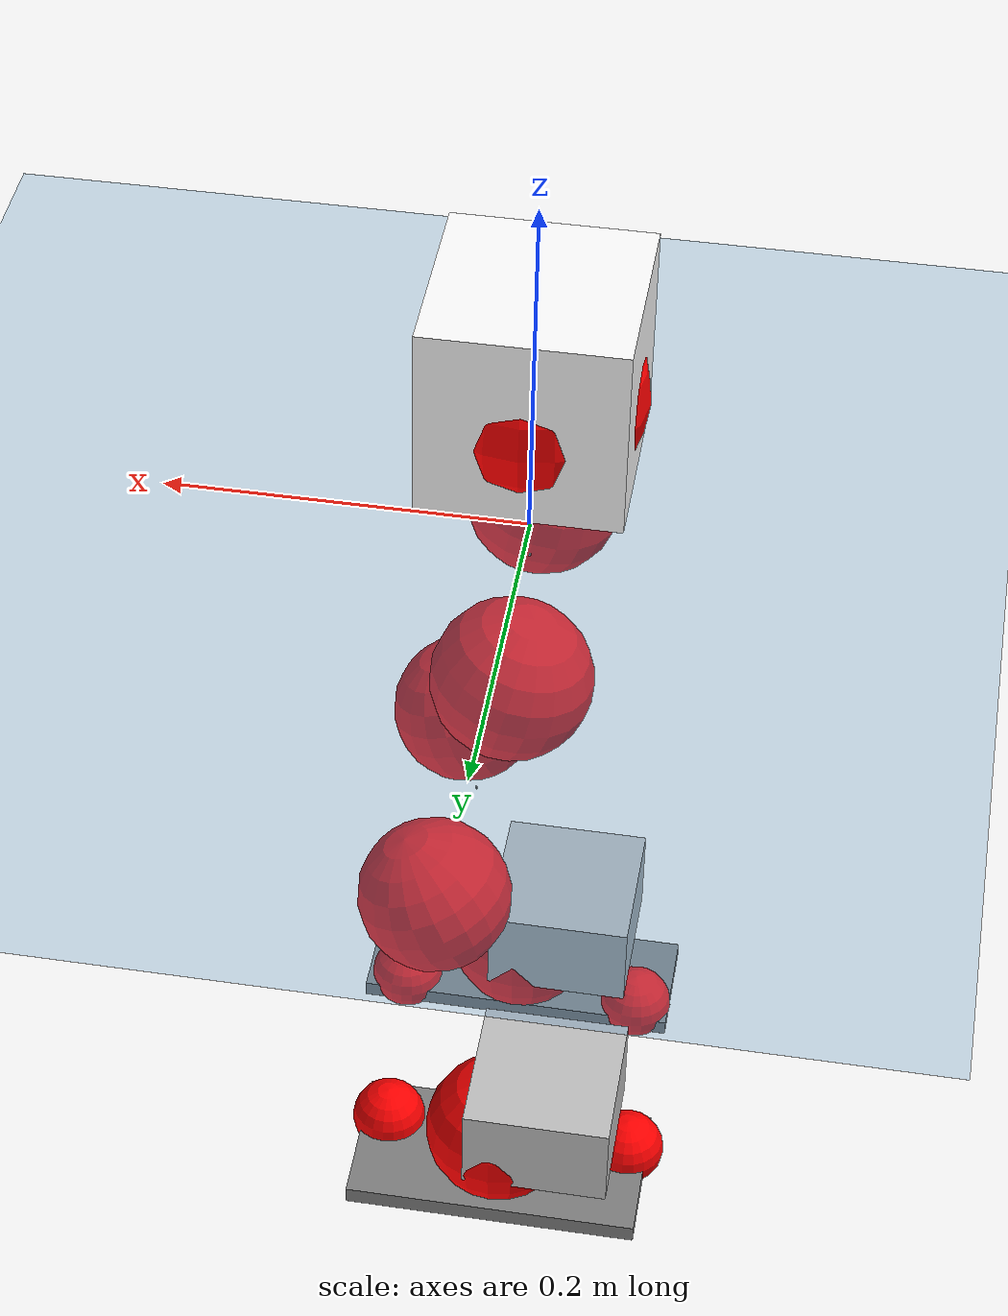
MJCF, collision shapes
<mujoco model="pi_12dof_release_v1">
  <compiler angle="radian" assetdir="assets" balanceinertia="true" inertiafromgeom="false"/>

  <option timestep="0.005" density="1.2" viscosity="2e-05"/>

  <size nkey="1"/>

  <visual>
    <quality shadowsize="8192"/>
    <map shadowclip="0.5"/>
  </visual>

  <default>
    <default class="/">
      <joint armature="0.01" damping="0.01" frictionloss="0.01"/>
      <geom contype="0" conaffinity="0" group="1" solref="-1000 -80"/>
      <site size="0.01 0.005 0.005" group="5"/>
      <general forcelimited="true" biastype="affine" gainprm="20" biasprm="0 -20 -0.5"/>
      <default class="foot">
        <geom size="0.0845 0.036 0.005" type="box" condim="6" group="4" priority="1" friction="0.9 0.2 0.2" solimp="0.015 1 0.005"/>
      </default>
      <default class="reward_collision_sphere">
        <geom group="5" rgba="1 0 0 1"/>
      </default>
    </default>
  </default>

  <asset>
    <texture type="skybox" colorspace="auto" name="//unnamed_texture_0" builtin="gradient" rgb1="0.95 0.95 0.95" rgb2="0.95 0.95 0.95" width="100" height="600"/>
    <texture type="2d" colorspace="auto" name="texplane" builtin="checker" rgb1="0.345 0.575 0.748" rgb2="0.345 0.575 0.748" markrgb="1 1 1" width="512" height="512"/>
    <material name="MatPlane" class="/" texture="texplane" texuniform="true" texrepeat="2 2" specular="0.9"/>
    <mesh name="baselink_1" class="/" file="baselink_1.STL"/>
    <mesh name="r_hip_pitch_link" class="/" file="r_hip_pitch_link.STL"/>
    <mesh name="r_hip_roll_link" class="/" file="r_hip_roll_link.STL"/>
    <mesh name="r_thigh_link" class="/" file="r_thigh_link.STL"/>
    <mesh name="r_calf_link" class="/" file="r_calf_link.STL"/>
    <mesh name="r_ankle_pitch_link" class="/" file="r_ankle_pitch_link.STL"/>
    <mesh name="r_ankle_roll_link" class="/" file="r_ankle_roll_link.STL"/>
    <mesh name="l_hip_pitch_link" class="/" file="l_hip_pitch_link.STL"/>
    <mesh name="l_hip_roll_link" class="/" file="l_hip_roll_link.STL"/>
    <mesh name="l_thigh_link" class="/" file="l_thigh_link.STL"/>
    <mesh name="l_calf_link" class="/" file="l_calf_link.STL"/>
    <mesh name="l_ankle_pitch_link" class="/" file="l_ankle_pitch_link.STL"/>
    <mesh name="l_ankle_roll_link" class="/" file="l_ankle_roll_link.STL"/>
  </asset>

  <worldbody>
    <geom name="floor" class="/" size="100 100 0.125" type="plane" group="0" material="MatPlane"/>
    <light name="toplight_shadow" class="/" pos="0 0 5" dir="0.0990148 0.0990148 -0.990148" type="directional" ambient="0.04 0.04 0.04" diffuse="0.55 0.55 0.55" specular="0.12 0.12 0.12"/>
    <light name="toplight_fill" class="/" pos="0 0 5" dir="0.0990148 0.0990148 -0.990148" type="directional" castshadow="false" ambient="0.04 0.04 0.04" diffuse="0.3 0.3 0.3" specular="0.08 0.08 0.08"/>
    <body name="trunk" pos="-0.000394373 -0.00270582 -0.00103915" quat="1 -1.92681e-05 -3.91358e-05 2.03156e-05">
      <inertial pos="0.00379764 -0.00272264 0.0502945" quat="0.696551 0.00959389 0.0125807 0.717333" mass="2.80398" diaginertia="0.0138232 0.00702852 0.0127116"/>
      <joint name="//unnamed_joint_0" type="free"/>
      <geom name="//unnamed_geom_1" class="/" type="mesh" density="0" rgba="1 1 1 1" mesh="baselink_1"/>
      <geom name="//unnamed_geom_2" class="/" size="0.054773 0.054773 0.054773" pos="0 0 0.10009" type="box" rgba="1 1 1 1"/>
      <geom name="//unnamed_geom_3" class="reward_collision_sphere" size="0.0602503" pos="0 0 0.0875788"/>
      <site name="imu" class="/" pos="0.0138144 0.0134611 -0.0135443" size="0.0109546"/>
      <camera name="track" class="/" pos="0 -1.91264 0" quat="0.707107 0.707107 0 0" mode="trackcom"/>
      <camera name="ego_camera" class="/" pos="0.0809198 0 0.225203" quat="-0.5 -0.5 0.5 0.5"/>
      <body name="r_hip_pitch_link" pos="0.00281841 -0.0211368 -0.0397094" quat="0.992241 -0.00103307 -0.124326 0.000642467">
        <inertial pos="0.00185915 -0.054078 0.00272205" quat="-0.0172102 0.704853 -0.0237475 0.708747" mass="0.470004" diaginertia="0.000158568 7.52904e-05 0.000253268"/>
        <joint name="r_hip_pitch_joint" class="/" pos="0 0 0" axis="0.00327634 -0.999993 -0.00182193" range="-1.74136 1.19585" armature="0.0109823" damping="0.0169627" frictionloss="0.010777"/>
        <geom name="//unnamed_geom_4" class="/" type="mesh" density="0" rgba="0.75294 0.75294 0.75294 1" mesh="r_hip_pitch_link"/>
        <geom name="//unnamed_geom_5" class="/" size="0.00054773 0.00054773 0.00054773" type="box" rgba="0.75294 0.75294 0.75294 1"/>
        <body name="r_hip_roll_link" pos="-0.000400175 -0.0531088 -0.00107001" quat="0.999999 0.000945805 4.21785e-05 -0.00107189">
          <inertial pos="0.00134323 0.00286367 -0.0765011" quat="0.706604 -0.0904901 -0.0816017 0.697039" mass="0.509874" diaginertia="0.000478203 0.000219742 0.000385745"/>
          <joint name="r_hip_roll_joint" class="/" pos="0 0 0" axis="-0.999899 0.00012136 -0.014185" range="-0.124604 0.547924" armature="0.00929707" damping="0.0217474" frictionloss="0.0114366"/>
          <geom name="//unnamed_geom_6" class="/" type="mesh" density="0" rgba="0.75294 0.75294 0.75294 1" mesh="r_hip_roll_link"/>
          <geom name="//unnamed_geom_7" class="/" size="0.00054773 0.00054773 0.00054773" type="box" rgba="0.75294 0.75294 0.75294 1"/>
          <geom name="//unnamed_geom_8" class="reward_collision_sphere" size="0.0438184"/>
          <body name="r_thigh_link" pos="-0.00161357 -0.00161831 -0.0877298" quat="0.999999 0.000172329 0.000872206 -0.00103812">
            <inertial pos="0.00322779 0.000872526 -0.060622" quat="0.737315 0.675547 -0.00162509 0.000681982" mass="0.150819" diaginertia="0.000177432 7.76995e-05 0.000175274"/>
            <joint name="r_thigh_joint" class="/" pos="0 0 0" axis="-0.0018041 -0.00132035 -0.999998" range="-0.358071 0.591256" armature="0.009821" damping="0.00170973" frictionloss="0.0112203"/>
            <geom name="//unnamed_geom_9" class="/" type="mesh" density="0" rgba="0.75294 0.75294 0.75294 1" mesh="r_thigh_link"/>
            <geom name="//unnamed_geom_10" class="/" size="0.00054773 0.00054773 0.00054773" type="box" rgba="0.75294 0.75294 0.75294 1"/>
            <body name="r_calf_link" pos="0.000450064 -0.00385681 -0.0894513" quat="0.947666 -0.000196266 0.319264 4.6024e-05">
              <inertial pos="-0.00235353 -0.000678368 -0.0871646" quat="0.999954 -0.00560948 0.00109791 0.00771668" mass="1.02612" diaginertia="0.00501925 0.0027379 0.000545652"/>
              <joint name="r_calf_joint" class="/" pos="0 0 0" axis="0.000940432 -0.999922 0.0124191" range="-1.63487 0.699131" armature="0.0107471" damping="0.00970374" frictionloss="0.0122944"/>
              <geom name="//unnamed_geom_11" class="/" type="mesh" density="0" rgba="0.75294 0.75294 0.75294 1" mesh="r_calf_link"/>
              <geom name="//unnamed_geom_12" class="/" size="0.00054773 0.00054773 0.00054773" type="box" rgba="0.75294 0.75294 0.75294 1"/>
              <geom name="//unnamed_geom_13" class="reward_collision_sphere" size="0.0438184"/>
              <body name="r_ankle_pitch_link" pos="0.00230633 0.00114161 -0.171948" quat="0.980014 -0.000379339 -0.198926 -0.000972678">
                <inertial pos="0.00266766 0.0023647 0.000861592" quat="-0.00372505 0.708369 -0.0145967 0.705682" mass="0.24694" diaginertia="0.000458135 0.000183397 0.000370552"/>
                <joint name="r_ankle_pitch_joint" class="/" pos="0 0 0" axis="-0.00726819 -0.999962 0.00471712" range="-1.24896 0.536388" armature="0.0106071" damping="0.0227979" frictionloss="0.0100818"/>
                <geom name="//unnamed_geom_14" class="/" type="mesh" density="0" rgba="0.75294 0.75294 0.75294 1" mesh="r_ankle_pitch_link"/>
                <geom name="//unnamed_geom_15" class="/" size="0.0427229 0.0438184 0.0273865" type="box" rgba="0.75294 0.75294 0.75294 1"/>
                <body name="r_ankle_roll_link" pos="0.0810469 0.00227229 -0.00227668" quat="0.999999 -0.000127461 -0.000966924 0.000629806">
                  <inertial pos="-0.0236715 0.000783239 -0.0153494" quat="0.549498 0.430204 0.442509 0.563171" mass="0.6739" diaginertia="0.00165733 0.000825794 0.000881492"/>
                  <joint name="r_ankle_roll_joint" class="/" pos="0 0 0" axis="-1 -0.000561647 0.000490896" stiffness="0.00448281" range="-0.176917 0.161087" armature="0.0108654" damping="0.00121481" frictionloss="0.00957782"/>
                  <geom name="//unnamed_geom_16" class="/" type="mesh" density="0" rgba="0.75294 0.75294 0.75294 1" mesh="r_ankle_roll_link"/>
                  <geom name="//unnamed_geom_17" class="/" type="mesh" rgba="0.75294 0.75294 0.75294 1" mesh="r_ankle_roll_link"/>
                  <geom name="right_foot" class="foot" size="0.095237 0.0342378 0.00489686" pos="-0.0550255 0 -0.0550495"/>
                  <geom name="//unnamed_geom_19" class="reward_collision_sphere" size="0.0438184" pos="-0.0539465 0 -0.0250225"/>
                  <geom name="//unnamed_geom_20" class="reward_collision_sphere" size="0.0219092" pos="0.016184 0.0191264 -0.050045"/>
                  <geom name="//unnamed_geom_21" class="reward_collision_sphere" size="0.0219092" pos="-0.129472 0.0191264 -0.050045"/>
                  <site name="right_foot" class="foot" pos="-0.0550255 0 -0.0550495" size="0.0109546"/>
                </body>
              </body>
            </body>
          </body>
        </body>
      </body>
      <body name="l_hip_pitch_link" pos="0.000255065 0.0227483 -0.0415813" quat="0.992248 -0.000479708 -0.124271 -0.000245419">
        <inertial pos="0.00161534 0.0493187 0.00225308" quat="-0.037607 0.708454 0.0297646 0.704126" mass="0.530656" diaginertia="0.000192387 8.61471e-05 0.000314459"/>
        <joint name="l_hip_pitch_joint" class="/" pos="0 0 0" axis="-0.000916305 1 -0.000219155" stiffness="0.00836006" range="-1.24407 1.74515" armature="0.0112216" damping="0.000612496" frictionloss="0.0125109"/>
        <geom name="//unnamed_geom_22" class="/" type="mesh" density="0" rgba="0.75294 0.75294 0.75294 1" mesh="l_hip_pitch_link"/>
        <geom name="//unnamed_geom_23" class="/" size="0.00054773 0.00054773 0.00054773" type="box" rgba="0.75294 0.75294 0.75294 1"/>
        <body name="l_hip_roll_link" pos="-0.00302154 0.0538725 -0.00103314" quat="1 1.0628e-05 -3.71706e-05 1.33534e-05">
          <inertial pos="-0.00329934 0.00100313 -0.0777492" quat="0.703075 -0.0743696 -0.0899995 0.701466" mass="0.526842" diaginertia="0.000493939 0.000232199 0.000407198"/>
          <joint name="l_hip_roll_joint" class="/" pos="0 0 0" axis="-0.999924 0.00313199 0.0119081" range="-0.535358 0.107223" armature="0.0123403" damping="0.00272741" frictionloss="0.0118511"/>
          <geom name="//unnamed_geom_24" class="/" type="mesh" density="0" rgba="0.75294 0.75294 0.75294 1" mesh="l_hip_roll_link"/>
          <geom name="//unnamed_geom_25" class="/" size="0.00054773 0.00054773 0.00054773" type="box" rgba="0.75294 0.75294 0.75294 1"/>
          <geom name="//unnamed_geom_26" class="reward_collision_sphere" size="0.0438184"/>
          <body name="l_thigh_link" pos="-0.00325006 -0.00116665 -0.0854996" quat="1 1.85645e-06 6.64493e-05 -5.20047e-05">
            <inertial pos="0.000549688 -0.00169407 -0.0594527" quat="0.67558 0.737278 0.0035054 0.0005485" mass="0.158649" diaginertia="0.000194462 7.90615e-05 0.000182981"/>
            <joint name="l_thigh_joint" class="/" pos="0 0 0" axis="0.000106815 -0.000123675 -1" range="-0.617734 0.294906" armature="0.00937905" damping="0.0124853" frictionloss="0.0110881"/>
            <geom name="//unnamed_geom_27" class="/" type="mesh" density="0" rgba="0.75294 0.75294 0.75294 1" mesh="l_thigh_link"/>
            <geom name="//unnamed_geom_28" class="/" size="0.00054773 0.00054773 0.00054773" type="box" rgba="0.75294 0.75294 0.75294 1"/>
            <body name="l_calf_link" pos="0.000400166 0.000178573 -0.0900513" quat="0.947397 0.000261549 0.320058 0.000806919">
              <inertial pos="0.00123628 0.00569091 -0.0903986" quat="0.999988 0.00361335 -0.000383644 0.00331439" mass="1.09813" diaginertia="0.00550555 0.00295308 0.000566166"/>
              <joint name="l_calf_joint" class="/" pos="0 0 0" axis="0.0149977 0.999858 0.00763698" range="-0.648305 1.617" armature="0.01144" damping="0.0106029" frictionloss="0.0117365"/>
              <geom name="//unnamed_geom_29" class="/" type="mesh" density="0" rgba="0.75294 0.75294 0.75294 1" mesh="l_calf_link"/>
              <geom name="//unnamed_geom_30" class="/" size="0.00054773 0.00054773 0.00054773" type="box" rgba="0.75294 0.75294 0.75294 1"/>
              <geom name="//unnamed_geom_31" class="reward_collision_sphere" size="0.0438184"/>
              <body name="l_ankle_pitch_link" pos="0.000368703 0.00382641 -0.174322" quat="0.979877 0.000134992 -0.199603 -0.000327939">
                <inertial pos="0.00559927 -0.00305558 0.00269362" quat="-0.00203129 0.70712 0.00222007 0.707088" mass="0.221581" diaginertia="0.000428722 0.000170766 0.000354644"/>
                <joint name="l_ankle_pitch_joint" class="/" pos="0 0 0" axis="0.000539954 0.999999 0.0014309" range="-0.558414 1.36121" armature="0.0103868" damping="0.00930124" frictionloss="0.0109653"/>
                <geom name="//unnamed_geom_32" class="/" type="mesh" density="0" rgba="0.75294 0.75294 0.75294 1" mesh="l_ankle_pitch_link"/>
                <geom name="//unnamed_geom_33" class="/" size="0.0427229 0.0438184 0.0273865" type="box" rgba="0.75294 0.75294 0.75294 1"/>
                <body name="l_ankle_roll_link" pos="0.0807393 0.00289505 0.00152257" quat="0.999999 -0.00108023 -0.000327707 0.00038655">
                  <inertial pos="-0.024885 0.000130861 -0.0192902" quat="0.566065 0.425363 0.43474 0.556451" mass="0.692992" diaginertia="0.00170446 0.000820402 0.000870822"/>
                  <joint name="l_ankle_roll_joint" class="/" pos="0 0 0" axis="-0.999985 0.000836361 0.00548926" range="-0.127267 0.097791" armature="0.0118743" damping="0.0194091" frictionloss="0.00964653"/>
                  <geom name="//unnamed_geom_34" class="/" type="mesh" density="0" rgba="0.75294 0.75294 0.75294 1" mesh="l_ankle_roll_link"/>
                  <geom name="//unnamed_geom_35" class="/" type="mesh" rgba="0.75294 0.75294 0.75294 1" mesh="l_ankle_roll_link"/>
                  <geom name="left_foot" class="foot" size="0.0862254 0.0432929 0.00529835" pos="-0.0550255 0 -0.0550495"/>
                  <geom name="//unnamed_geom_37" class="reward_collision_sphere" size="0.0438184" pos="-0.0539465 0 -0.0250225"/>
                  <geom name="//unnamed_geom_38" class="reward_collision_sphere" size="0.0219092" pos="0.016184 -0.0191264 -0.050045"/>
                  <geom name="//unnamed_geom_39" class="reward_collision_sphere" size="0.0219092" pos="-0.129472 -0.0191264 -0.050045"/>
                  <site name="left_foot" class="foot" pos="-0.0550255 0 -0.0550495" size="0.0109546"/>
                </body>
              </body>
            </body>
          </body>
        </body>
      </body>
    </body>
  </worldbody>

  <contact>
    <pair class="/" geom1="floor" geom2="right_foot" name="//unnamed_contact_1"/>
    <pair class="/" geom1="floor" geom2="left_foot" name="//unnamed_contact_0"/>
  </contact>

  <actuator>
    <general name="r_hip_pitch_joint" class="/" joint="r_hip_pitch_joint" forcerange="-22.5997 22.5997" gainprm="20.4491" biasprm="0 -20.4491 -0.545505"/>
    <general name="r_hip_roll_joint" class="/" joint="r_hip_roll_joint" forcerange="-22.8172 22.8172" gainprm="20.4491" biasprm="0 -20.4491 -0.545505"/>
    <general name="r_thigh_joint" class="/" joint="r_thigh_joint" forcerange="-25.5174 25.5174" gainprm="20.4491" biasprm="0 -20.4491 -0.545505"/>
    <general name="r_calf_joint" class="/" joint="r_calf_joint" forcerange="-21.0751 21.0751" gainprm="20.4491" biasprm="0 -20.4491 -0.545505"/>
    <general name="r_ankle_pitch_joint" class="/" joint="r_ankle_pitch_joint" forcerange="-24.5447 24.5447" gainprm="20.4491" biasprm="0 -20.4491 -0.545505"/>
    <general name="r_ankle_roll_joint" class="/" joint="r_ankle_roll_joint" forcerange="-24.5268 24.5268" gainprm="20.4491" biasprm="0 -20.4491 -0.545505"/>
    <general name="l_hip_pitch_joint" class="/" joint="l_hip_pitch_joint" forcerange="-23.7344 23.7344" gainprm="20.4491" biasprm="0 -20.4491 -0.545505"/>
    <general name="l_hip_roll_joint" class="/" joint="l_hip_roll_joint" forcerange="-20.5844 20.5844" gainprm="20.4491" biasprm="0 -20.4491 -0.545505"/>
    <general name="l_thigh_joint" class="/" joint="l_thigh_joint" forcerange="-22.1109 22.1109" gainprm="20.4491" biasprm="0 -20.4491 -0.545505"/>
    <general name="l_calf_joint" class="/" joint="l_calf_joint" forcerange="-24.5066 24.5066" gainprm="20.4491" biasprm="0 -20.4491 -0.545505"/>
    <general name="l_ankle_pitch_joint" class="/" joint="l_ankle_pitch_joint" forcerange="-24.5053 24.5053" gainprm="20.4491" biasprm="0 -20.4491 -0.545505"/>
    <general name="l_ankle_roll_joint" class="/" joint="l_ankle_roll_joint" forcerange="-25.442 25.442" gainprm="20.4491" biasprm="0 -20.4491 -0.545505"/>
  </actuator>

  <sensor>
    <gyro site="imu" name="imu_angular_velocity"/>
    <velocimeter site="imu" name="imu_linear_velocity"/>
    <framelinvel objtype="site" objname="left_foot" name="left_foot_global_linear_velocity"/>
    <framelinvel objtype="site" objname="right_foot" name="right_foot_global_linear_velocity"/>
  </sensor>

  <keyframe>
    <key name="home" qpos="0 0 0.291 1 0 0 0 0.4 0 0 -0.8 0.4 0 -0.4 0 0 0.8 -0.4 0"/>
  </keyframe>
</mujoco>
